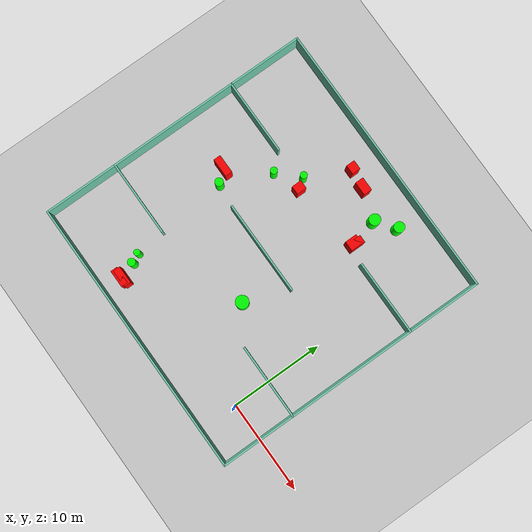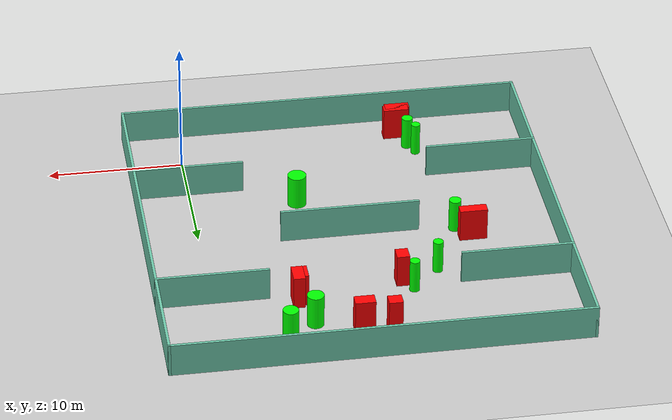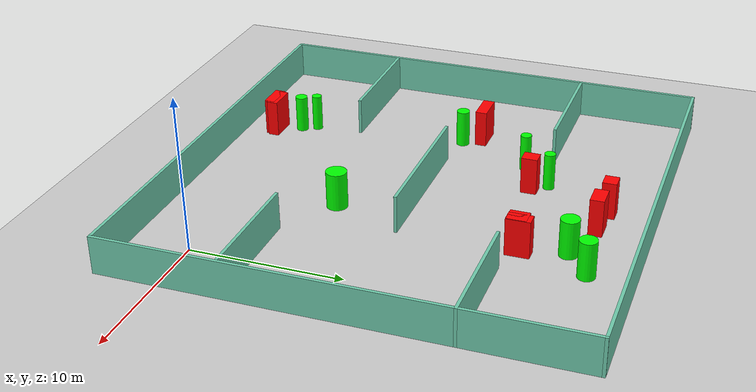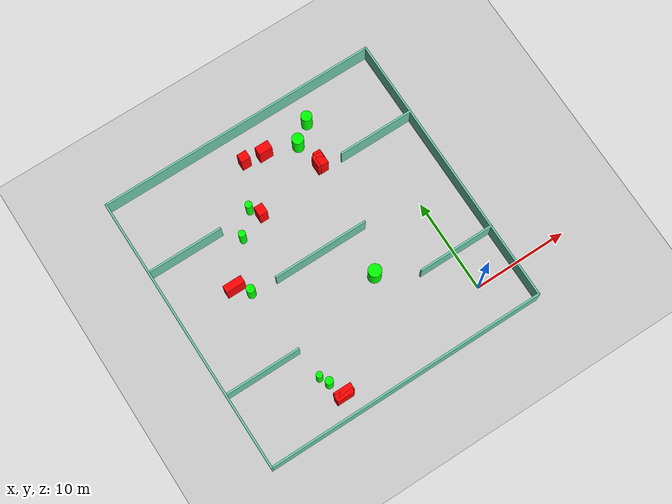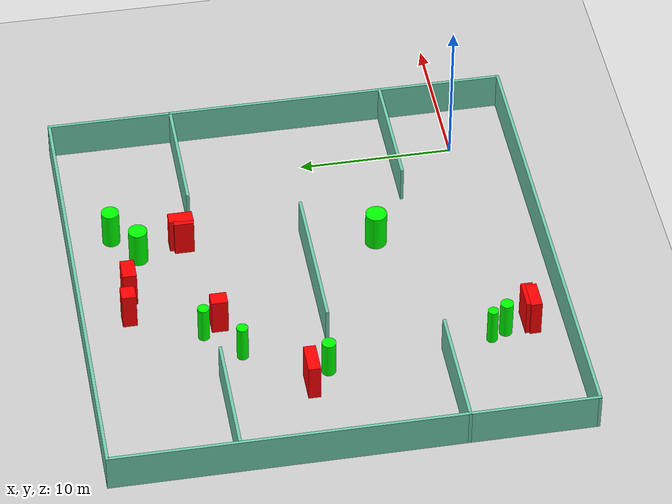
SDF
<sdf version="1.7">
 <world name="default">
  <light name="sun" type="directional">
   <pose>0 0 10 0 -0 0</pose>
   <diffuse>0.8 0.8 0.8 1</diffuse>
   <specular>0.2 0.2 0.2 1</specular>
   <attenuation>
    <range>1000</range>
    <constant>0.9</constant>
    <linear>0.01</linear>
    <quadratic>0.001</quadratic>
   </attenuation>
   <direction>-0.5 0.1 -0.9</direction>
   <spot><inner_angle>0</inner_angle><outer_angle>0</outer_angle><falloff>0</falloff></spot>
  </light>
  <model name="ground_plane">
   <static>1</static>
   <link name="link">
    <collision name="collision">
     <geometry><plane><normal>0 0 1</normal><size>100 100</size></plane></geometry>
     <surface>
      <contact><collide_bitmask>65535</collide_bitmask></contact>
      <friction><ode><mu>100</mu><mu2>50</mu2></ode></friction>
     </surface>
    </collision>
    <visual name="visual">
     <cast_shadows>0</cast_shadows>
     <geometry><plane><normal>0 0 1</normal><size>100 100</size></plane></geometry>
     <material>
      <script><uri>file://media/materials/scripts/gazebo.material</uri><name>Gazebo/Grey</name></script>
     </material>
    </visual>
   </link>
  </model>
  <gravity>0 0 -9.8</gravity>
  <magnetic_field>6e-06 2.3e-05 -4.2e-05</magnetic_field>
  <atmosphere type="adiabatic"/>
  <physics type="ode">
   <max_step_size>0.001</max_step_size>
   <real_time_factor>1</real_time_factor>
   <real_time_update_rate>1000</real_time_update_rate>
  </physics>
  <scene><ambient>0.4 0.4 0.4 1</ambient><background>0.7 0.7 0.7 1</background><shadows>1</shadows></scene>
  <spherical_coordinates>
   <surface_model>EARTH_WGS84</surface_model>
   <latitude_deg>0</latitude_deg>
   <longitude_deg>0</longitude_deg>
   <elevation>0</elevation>
   <heading_deg>0</heading_deg>
  </spherical_coordinates>
  <model name="my_base_walls">
   <link name="Wall_10">
    <collision name="Wall_10_Collision">
     <geometry><box><size>8.2 0.2 2.5</size></box></geometry>
     <pose>0 0 1.25 0 -0 0</pose>
    </collision>
    <visual name="Wall_10_Visual">
     <pose>0 0 1.25 0 -0 0</pose>
     <geometry><box><size>8.2 0.2 2.5</size></box></geometry>
     <material>
      <script><uri>file://media/materials/scripts/gazebo.material</uri><name>Gazebo/Grey</name></script>
      <ambient>0.435294 0.796078 0.67451 1</ambient>
     </material>
     <meta><layer>0</layer></meta>
    </visual>
    <pose>-11 -7 0 0 -0 0</pose>
   </link>
   <link name="Wall_12">
    <collision name="Wall_12_Collision">
     <geometry><box><size>8.2 0.2 2.5</size></box></geometry>
     <pose>0 0 1.25 0 -0 0</pose>
    </collision>
    <visual name="Wall_12_Visual">
     <pose>0 0 1.25 0 -0 0</pose>
     <geometry><box><size>8.2 0.2 2.5</size></box></geometry>
     <material>
      <script><uri>file://media/materials/scripts/gazebo.material</uri><name>Gazebo/Grey</name></script>
      <ambient>0.435294 0.796078 0.67451 1</ambient>
     </material>
     <meta><layer>0</layer></meta>
    </visual>
    <pose>-11 7 0 0 -0 0</pose>
   </link>
   <link name="Wall_14">
    <collision name="Wall_14_Collision">
     <geometry><box><size>8.2 0.2 2.5</size></box></geometry>
     <pose>0 0 1.25 0 -0 0</pose>
    </collision>
    <visual name="Wall_14_Visual">
     <pose>0 0 1.25 0 -0 0</pose>
     <geometry><box><size>8.2 0.2 2.5</size></box></geometry>
     <material>
      <script><uri>file://media/materials/scripts/gazebo.material</uri><name>Gazebo/Grey</name></script>
      <ambient>0.435294 0.796078 0.67451 1</ambient>
     </material>
     <meta><layer>0</layer></meta>
    </visual>
    <pose>11 7 0 0 -0 3.14159</pose>
   </link>
   <link name="Wall_16">
    <collision name="Wall_16_Collision">
     <geometry><box><size>10.2 0.2 2.5</size></box></geometry>
     <pose>0 0 1.25 0 -0 0</pose>
    </collision>
    <visual name="Wall_16_Visual">
     <pose>0 0 1.25 0 -0 0</pose>
     <geometry><box><size>10.2 0.2 2.5</size></box></geometry>
     <material>
      <script><uri>file://media/materials/scripts/gazebo.material</uri><name>Gazebo/Grey</name></script>
      <ambient>0.435294 0.796078 0.67451 1</ambient>
     </material>
     <meta><layer>0</layer></meta>
    </visual>
    <pose>0 0 0 0 -0 3.14159</pose>
   </link>
   <link name="Wall_2">
    <collision name="Wall_2_Collision">
     <geometry><box><size>30.2 0.2 2.5</size></box></geometry>
     <pose>0 0 1.25 0 -0 0</pose>
    </collision>
    <visual name="Wall_2_Visual">
     <pose>0 0 1.25 0 -0 0</pose>
     <geometry><box><size>30.2 0.2 2.5</size></box></geometry>
     <material>
      <script><uri>file://media/materials/scripts/gazebo.material</uri><name>Gazebo/Grey</name></script>
      <ambient>0.435294 0.796078 0.67451 1</ambient>
     </material>
     <meta><layer>0</layer></meta>
    </visual>
    <pose>0 -15 0 0 -0 3.14159</pose>
   </link>
   <link name="Wall_3">
    <collision name="Wall_3_Collision">
     <geometry><box><size>30.2 0.2 2.5</size></box></geometry>
     <pose>0 0 1.25 0 -0 0</pose>
    </collision>
    <visual name="Wall_3_Visual">
     <pose>0 0 1.25 0 -0 0</pose>
     <geometry><box><size>30.2 0.2 2.5</size></box></geometry>
     <material>
      <script><uri>file://media/materials/scripts/gazebo.material</uri><name>Gazebo/Grey</name></script>
      <ambient>0.435294 0.796078 0.67451 1</ambient>
     </material>
     <meta><layer>0</layer></meta>
    </visual>
    <pose>-15 0 0 0 -0 1.5708</pose>
   </link>
   <link name="Wall_4">
    <collision name="Wall_4_Collision">
     <geometry><box><size>30.2 0.2 2.5</size></box></geometry>
     <pose>0 0 1.25 0 -0 0</pose>
    </collision>
    <visual name="Wall_4_Visual">
     <pose>0 0 1.25 0 -0 0</pose>
     <geometry><box><size>30.2 0.2 2.5</size></box></geometry>
     <material>
      <script><uri>file://media/materials/scripts/gazebo.material</uri><name>Gazebo/Grey</name></script>
      <ambient>0.435294 0.796078 0.67451 1</ambient>
     </material>
     <meta><layer>0</layer></meta>
    </visual>
    <pose>0 15 0 0 -0 0</pose>
   </link>
   <link name="Wall_6">
    <collision name="Wall_6_Collision">
     <geometry><box><size>30.2 0.2 2.5</size></box></geometry>
     <pose>0 0 1.25 0 -0 0</pose>
    </collision>
    <visual name="Wall_6_Visual">
     <pose>0 0 1.25 0 -0 0</pose>
     <geometry><box><size>30.2 0.2 2.5</size></box></geometry>
     <material>
      <script><uri>file://media/materials/scripts/gazebo.material</uri><name>Gazebo/Grey</name></script>
      <ambient>0.435294 0.796078 0.67451 1</ambient>
     </material>
     <meta><layer>0</layer></meta>
    </visual>
    <pose>15 0 0 0 -0 1.5708</pose>
   </link>
   <link name="Wall_8">
    <collision name="Wall_8_Collision">
     <geometry><box><size>8.2 0.2 2.5</size></box></geometry>
     <pose>0 0 1.25 0 -0 0</pose>
    </collision>
    <visual name="Wall_8_Visual">
     <pose>0 0 1.25 0 -0 0</pose>
     <geometry><box><size>8.2 0.2 2.5</size></box></geometry>
     <material>
      <script><uri>file://media/materials/scripts/gazebo.material</uri><name>Gazebo/Grey</name></script>
      <ambient>0.435294 0.796078 0.67451 1</ambient>
     </material>
     <meta><layer>0</layer></meta>
    </visual>
    <pose>11 -7 0 0 -0 3.14159</pose>
   </link>
   <static>1</static>
   <pose>-11 11 0 0 -0 0</pose>
  </model>
  <model name="cylinder1">
   <static>1</static>
   <link name="link">
    <inertial>
     <mass>1</mass>
     <inertia><ixx>0.5</ixx><ixy>0</ixy><ixz>0</ixz><iyy>0.5</iyy><iyz>0</iyz><izz>1</izz></inertia>
    </inertial>
    <collision name="collision">
     <geometry><cylinder><radius>0.3369523231305205</radius><length>2.5</length></cylinder></geometry>
    </collision>
    <visual name="visual">
     <geometry><cylinder><radius>0.3369523231305205</radius><length>2.5</length></cylinder></geometry>
     <material>
      <ambient>0 1 0 1</ambient>
      <diffuse>0 1 0 1</diffuse>
      <specular>0.1 0.1 0.1 1</specular>
      <emissive>0 0 0 0</emissive>
     </material>
    </visual>
   </link>
   <pose>-17.6738753594428 0.8407993557885862 1.25 0 0 0</pose>
  </model>
  <model name="cylinder2">
   <static>1</static>
   <link name="link">
    <inertial>
     <mass>1</mass>
     <inertia><ixx>0.5</ixx><ixy>0</ixy><ixz>0</ixz><iyy>0.5</iyy><iyz>0</iyz><izz>1</izz></inertia>
    </inertial>
    <collision name="collision">
     <geometry><cylinder><radius>0.4416197552557931</radius><length>2.5</length></cylinder></geometry>
    </collision>
    <visual name="visual">
     <geometry><cylinder><radius>0.4416197552557931</radius><length>2.5</length></cylinder></geometry>
     <material>
      <ambient>0 1 0 1</ambient>
      <diffuse>0 1 0 1</diffuse>
      <specular>0.1 0.1 0.1 1</specular>
      <emissive>0 0 0 0</emissive>
     </material>
    </visual>
   </link>
   <pose>-18.69690856539544 11.358443963926998 1.25 0 0 0</pose>
  </model>
  <model name="cylinder3">
   <static>1</static>
   <link name="link">
    <inertial>
     <mass>1</mass>
     <inertia><ixx>0.5</ixx><ixy>0</ixy><ixz>0</ixz><iyy>0.5</iyy><iyz>0</iyz><izz>1</izz></inertia>
    </inertial>
    <collision name="collision">
     <geometry><cylinder><radius>0.6065689998822354</radius><length>2.5</length></cylinder></geometry>
    </collision>
    <visual name="visual">
     <geometry><cylinder><radius>0.6065689998822354</radius><length>2.5</length></cylinder></geometry>
     <material>
      <ambient>0 1 0 1</ambient>
      <diffuse>0 1 0 1</diffuse>
      <specular>0.1 0.1 0.1 1</specular>
      <emissive>0 0 0 0</emissive>
     </material>
    </visual>
   </link>
   <pose>-6.8313306487302565 21.61642913852779 1.25 0 0 0</pose>
  </model>
  <model name="cylinder4">
   <static>1</static>
   <link name="link">
    <inertial>
     <mass>1</mass>
     <inertia><ixx>0.5</ixx><ixy>0</ixy><ixz>0</ixz><iyy>0.5</iyy><iyz>0</iyz><izz>1</izz></inertia>
    </inertial>
    <collision name="collision">
     <geometry><cylinder><radius>0.367740160177364</radius><length>2.5</length></cylinder></geometry>
    </collision>
    <visual name="visual">
     <geometry><cylinder><radius>0.367740160177364</radius><length>2.5</length></cylinder></geometry>
     <material>
      <ambient>0 1 0 1</ambient>
      <diffuse>0 1 0 1</diffuse>
      <specular>0.1 0.1 0.1 1</specular>
      <emissive>0 0 0 0</emissive>
     </material>
    </visual>
   </link>
   <pose>-14.43597489345821 18.530529414458726 1.25 0 0 0</pose>
  </model>
  <model name="cylinder5">
   <static>1</static>
   <link name="link">
    <inertial>
     <mass>1</mass>
     <inertia><ixx>0.5</ixx><ixy>0</ixy><ixz>0</ixz><iyy>0.5</iyy><iyz>0</iyz><izz>1</izz></inertia>
    </inertial>
    <collision name="collision">
     <geometry><cylinder><radius>0.6901210995305052</radius><length>2.5</length></cylinder></geometry>
    </collision>
    <visual name="visual">
     <geometry><cylinder><radius>0.6901210995305052</radius><length>2.5</length></cylinder></geometry>
     <material>
      <ambient>0 1 0 1</ambient>
      <diffuse>0 1 0 1</diffuse>
      <specular>0.1 0.1 0.1 1</specular>
      <emissive>0 0 0 0</emissive>
     </material>
    </visual>
   </link>
   <pose>-7.790135880463637 6.390568600855557 1.25 0 0 0</pose>
  </model>
  <model name="cylinder6">
   <static>1</static>
   <link name="link">
    <inertial>
     <mass>1</mass>
     <inertia><ixx>0.5</ixx><ixy>0</ixy><ixz>0</ixz><iyy>0.5</iyy><iyz>0</iyz><izz>1</izz></inertia>
    </inertial>
    <collision name="collision">
     <geometry><cylinder><radius>0.5660823171019125</radius><length>2.5</length></cylinder></geometry>
    </collision>
    <visual name="visual">
     <geometry><cylinder><radius>0.5660823171019125</radius><length>2.5</length></cylinder></geometry>
     <material>
      <ambient>0 1 0 1</ambient>
      <diffuse>0 1 0 1</diffuse>
      <specular>0.1 0.1 0.1 1</specular>
      <emissive>0 0 0 0</emissive>
     </material>
    </visual>
   </link>
   <pose>-4.846822922527821 23.129384578872017 1.25 0 0 0</pose>
  </model>
  <model name="cylinder7">
   <static>1</static>
   <link name="link">
    <inertial>
     <mass>1</mass>
     <inertia><ixx>0.5</ixx><ixy>0</ixy><ixz>0</ixz><iyy>0.5</iyy><iyz>0</iyz><izz>1</izz></inertia>
    </inertial>
    <collision name="collision">
     <geometry><cylinder><radius>0.4109357202461265</radius><length>2.5</length></cylinder></geometry>
    </collision>
    <visual name="visual">
     <geometry><cylinder><radius>0.4109357202461265</radius><length>2.5</length></cylinder></geometry>
     <material>
      <ambient>0 1 0 1</ambient>
      <diffuse>0 1 0 1</diffuse>
      <specular>0.1 0.1 0.1 1</specular>
      <emissive>0 0 0 0</emissive>
     </material>
    </visual>
   </link>
   <pose>-17.200657408237678 -0.12788512121299078 1.25 0 0 0</pose>
  </model>
  <model name="cylinder8">
   <static>1</static>
   <link name="link">
    <inertial>
     <mass>1</mass>
     <inertia><ixx>0.5</ixx><ixy>0</ixy><ixz>0</ixz><iyy>0.5</iyy><iyz>0</iyz><izz>1</izz></inertia>
    </inertial>
    <collision name="collision">
     <geometry><cylinder><radius>0.3671900582036445</radius><length>2.5</length></cylinder></geometry>
    </collision>
    <visual name="visual">
     <geometry><cylinder><radius>0.3671900582036445</radius><length>2.5</length></cylinder></geometry>
     <material>
      <ambient>0 1 0 1</ambient>
      <diffuse>0 1 0 1</diffuse>
      <specular>0.1 0.1 0.1 1</specular>
      <emissive>0 0 0 0</emissive>
     </material>
    </visual>
   </link>
   <pose>-16.51023822699097 16.402521294851645 1.25 0 0 0</pose>
  </model>
  <model name="box1">
   <static>1</static>
   <link name="link">
    <inertial>
     <mass>1</mass>
     <inertia><ixx>0.083</ixx><ixy>0</ixy><ixz>0</ixz><iyy>0.083</iyy><iyz>0</iyz><izz>0.083</izz></inertia>
    </inertial>
    <collision name="collision">
     <geometry><box><size>1.0589934435631296 1.2709277740751719 2.5</size></box></geometry>
    </collision>
    <visual name="visual">
     <geometry><box><size>1.0589934435631296 1.2709277740751719 2.5</size></box></geometry>
     <material>
      <ambient>1 0 0 1</ambient>
      <diffuse>1 0 0 1</diffuse>
      <specular>0.1 0.1 0.1 1</specular>
      <emissive>0 0 0 0</emissive>
     </material>
    </visual>
    <sensor name="my_contact" type="contact">
     <contact><collision>box_collision</collision><topic>__default_topic__</topic></contact>
    </sensor>
   </link>
   <pose>-6.190719059487336 18.627402438931757 1.25 0 0 0</pose>
  </model>
  <model name="box2">
   <static>1</static>
   <link name="link">
    <inertial>
     <mass>1</mass>
     <inertia><ixx>0.083</ixx><ixy>0</ixy><ixz>0</ixz><iyy>0.083</iyy><iyz>0</iyz><izz>0.083</izz></inertia>
    </inertial>
    <collision name="collision">
     <geometry><box><size>1.8844314089462826 0.7580462924331045 2.5</size></box></geometry>
    </collision>
    <visual name="visual">
     <geometry><box><size>1.8844314089462826 0.7580462924331045 2.5</size></box></geometry>
     <material>
      <ambient>1 0 0 1</ambient>
      <diffuse>1 0 0 1</diffuse>
      <specular>0.1 0.1 0.1 1</specular>
      <emissive>0 0 0 0</emissive>
     </material>
    </visual>
    <sensor name="my_contact" type="contact">
     <contact><collision>box_collision</collision><topic>__default_topic__</topic></contact>
    </sensor>
   </link>
   <pose>-16.5708159473953 -1.6921625904094522 1.25 0 0 0</pose>
  </model>
  <model name="box3">
   <static>1</static>
   <link name="link">
    <inertial>
     <mass>1</mass>
     <inertia><ixx>0.083</ixx><ixy>0</ixy><ixz>0</ixz><iyy>0.083</iyy><iyz>0</iyz><izz>0.083</izz></inertia>
    </inertial>
    <collision name="collision">
     <geometry><box><size>1.8402173703352727 0.7116472164765879 2.5</size></box></geometry>
    </collision>
    <visual name="visual">
     <geometry><box><size>1.8402173703352727 0.7116472164765879 2.5</size></box></geometry>
     <material>
      <ambient>1 0 0 1</ambient>
      <diffuse>1 0 0 1</diffuse>
      <specular>0.1 0.1 0.1 1</specular>
      <emissive>0 0 0 0</emissive>
     </material>
    </visual>
    <sensor name="my_contact" type="contact">
     <contact><collision>box_collision</collision><topic>__default_topic__</topic></contact>
    </sensor>
   </link>
   <pose>-16.704031928643598 -1.9348412219435622 1.25 0 0 0</pose>
  </model>
  <model name="box4">
   <static>1</static>
   <link name="link">
    <inertial>
     <mass>1</mass>
     <inertia><ixx>0.083</ixx><ixy>0</ixy><ixz>0</ixz><iyy>0.083</iyy><iyz>0</iyz><izz>0.083</izz></inertia>
    </inertial>
    <collision name="collision">
     <geometry><box><size>2.0191985254123224 0.7751444058759769 2.5</size></box></geometry>
    </collision>
    <visual name="visual">
     <geometry><box><size>2.0191985254123224 0.7751444058759769 2.5</size></box></geometry>
     <material>
      <ambient>1 0 0 1</ambient>
      <diffuse>1 0 0 1</diffuse>
      <specular>0.1 0.1 0.1 1</specular>
      <emissive>0 0 0 0</emissive>
     </material>
    </visual>
    <sensor name="my_contact" type="contact">
     <contact><collision>box_collision</collision><topic>__default_topic__</topic></contact>
    </sensor>
   </link>
   <pose>-19.78906995028852 12.597904521968632 1.25 0 0 0</pose>
  </model>
  <model name="box5">
   <static>1</static>
   <link name="link">
    <inertial>
     <mass>1</mass>
     <inertia><ixx>0.083</ixx><ixy>0</ixy><ixz>0</ixz><iyy>0.083</iyy><iyz>0</iyz><izz>0.083</izz></inertia>
    </inertial>
    <collision name="collision">
     <geometry><box><size>1.006043723101554 0.9162280185151205 2.5</size></box></geometry>
    </collision>
    <visual name="visual">
     <geometry><box><size>1.006043723101554 0.9162280185151205 2.5</size></box></geometry>
     <material>
      <ambient>1 0 0 1</ambient>
      <diffuse>1 0 0 1</diffuse>
      <specular>0.1 0.1 0.1 1</specular>
      <emissive>0 0 0 0</emissive>
     </material>
    </visual>
    <sensor name="my_contact" type="contact">
     <contact><collision>box_collision</collision><topic>__default_topic__</topic></contact>
    </sensor>
   </link>
   <pose>-12.24697693867666 22.941867992706754 1.25 0 0 0</pose>
  </model>
  <model name="box6">
   <static>1</static>
   <link name="link">
    <inertial>
     <mass>1</mass>
     <inertia><ixx>0.083</ixx><ixy>0</ixy><ixz>0</ixz><iyy>0.083</iyy><iyz>0</iyz><izz>0.083</izz></inertia>
    </inertial>
    <collision name="collision">
     <geometry><box><size>0.9192824068228657 1.0554899654751086 2.5</size></box></geometry>
    </collision>
    <visual name="visual">
     <geometry><box><size>0.9192824068228657 1.0554899654751086 2.5</size></box></geometry>
     <material>
      <ambient>1 0 0 1</ambient>
      <diffuse>1 0 0 1</diffuse>
      <specular>0.1 0.1 0.1 1</specular>
      <emissive>0 0 0 0</emissive>
     </material>
    </visual>
    <sensor name="my_contact" type="contact">
     <contact><collision>box_collision</collision><topic>__default_topic__</topic></contact>
    </sensor>
   </link>
   <pose>-13.710190884344781 17.452669629217798 1.25 0 0 0</pose>
  </model>
  <model name="box7">
   <static>1</static>
   <link name="link">
    <inertial>
     <mass>1</mass>
     <inertia><ixx>0.083</ixx><ixy>0</ixy><ixz>0</ixz><iyy>0.083</iyy><iyz>0</iyz><izz>0.083</izz></inertia>
    </inertial>
    <collision name="collision">
     <geometry><box><size>1.4689289469895672 0.8986580437952274 2.5</size></box></geometry>
    </collision>
    <visual name="visual">
     <geometry><box><size>1.4689289469895672 0.8986580437952274 2.5</size></box></geometry>
     <material>
      <ambient>1 0 0 1</ambient>
      <diffuse>1 0 0 1</diffuse>
      <specular>0.1 0.1 0.1 1</specular>
      <emissive>0 0 0 0</emissive>
     </material>
    </visual>
    <sensor name="my_contact" type="contact">
     <contact><collision>box_collision</collision><topic>__default_topic__</topic></contact>
    </sensor>
   </link>
   <pose>-10.134927837936655 22.65456768445057 1.25 0 0 0</pose>
  </model>
  <model name="box8">
   <static>1</static>
   <link name="link">
    <inertial>
     <mass>1</mass>
     <inertia><ixx>0.083</ixx><ixy>0</ixy><ixz>0</ixz><iyy>0.083</iyy><iyz>0</iyz><izz>0.083</izz></inertia>
    </inertial>
    <collision name="collision">
     <geometry><box><size>0.8429203244870223 1.568720682265874 2.5</size></box></geometry>
    </collision>
    <visual name="visual">
     <geometry><box><size>0.8429203244870223 1.568720682265874 2.5</size></box></geometry>
     <material>
      <ambient>1 0 0 1</ambient>
      <diffuse>1 0 0 1</diffuse>
      <specular>0.1 0.1 0.1 1</specular>
      <emissive>0 0 0 0</emissive>
     </material>
    </visual>
    <sensor name="my_contact" type="contact">
     <contact><collision>box_collision</collision><topic>__default_topic__</topic></contact>
    </sensor>
   </link>
   <pose>-6.015182827353298 18.75455152418145 1.25 0 0 0</pose>
  </model>
 </world>
</sdf>
